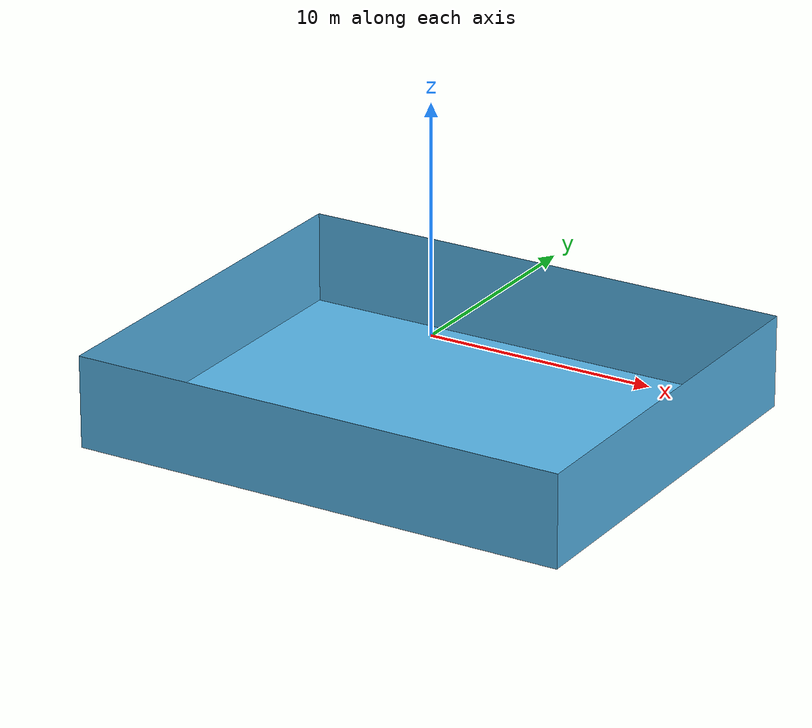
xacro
<?xml version="1.0"?>
<robot xmlns:xacro="http://www.ros.org/wiki/xacro" name="pool">

    <xacro:include filename="inertial_macros.xacro"/>

    <link name="wrapper"></link>

    <link name="pool">
        <visual name="visual">
          <geometry>
            <mesh filename="file://$(find sd_simulation)/meshes/pool.dae"/>
          </geometry>
        </visual>
        <collision name="collision">
          <geometry>
            <mesh filename="file://$(find sd_simulation)/meshes/pool.dae"/>
          </geometry>
        </collision>
        <xacro:inertial_box mass="1" x="1" y="1" z="1">
            <origin xyz="0 0 0" rpy="0 0 0"/>
        </xacro:inertial_box>
    </link>

    <joint name="wrapper_pool_joint" type="fixed">
        <parent link="wrapper"/>
        <child link="pool"/>
        <origin xyz="0 0 -4" rpy="0 0 0"/>
    </joint>

    <gazebo>
        <static>true</static>
    </gazebo>

</robot>
